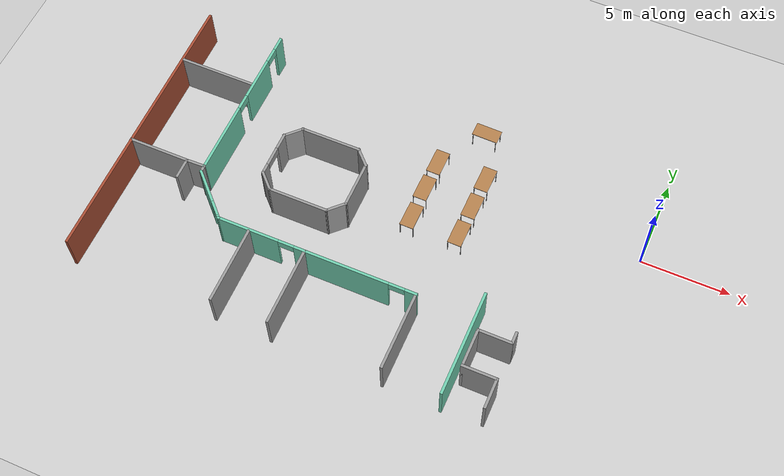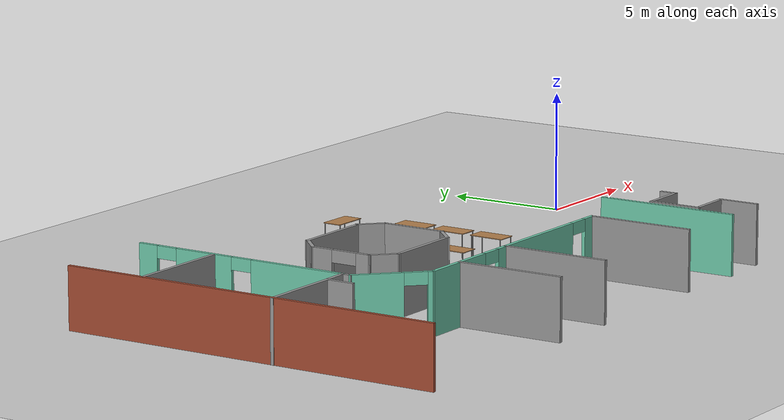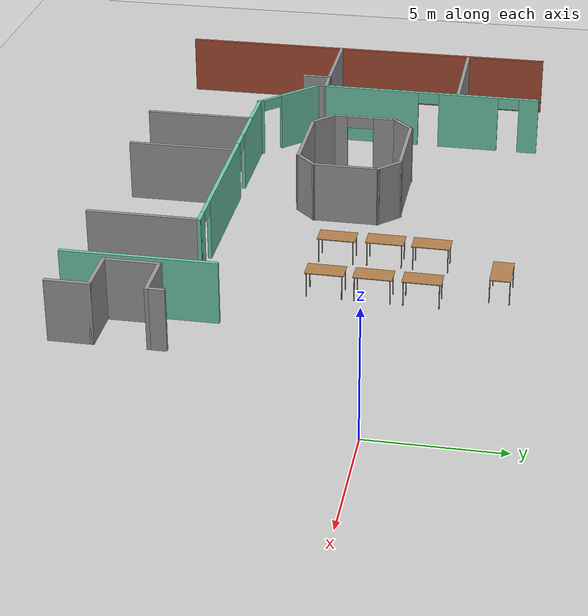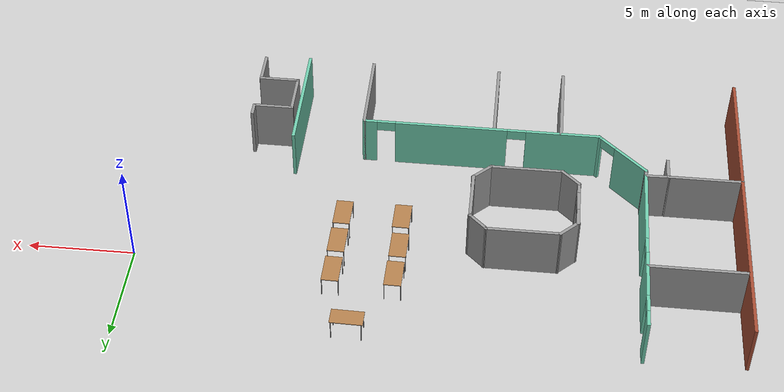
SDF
<sdf version="1.7">
 <world name="default">
  <model name="ground_plane">
   <static>1</static>
   <link name="link">
    <collision name="collision">
     <geometry><plane><normal>0 0 1</normal><size>100 100</size></plane></geometry>
     <surface>
      <contact><ode><kp>1e15</kp><kd>1e13</kd></ode></contact>
      <friction><ode><mu>1.0</mu><mu2>1.0</mu2></ode></friction>
     </surface>
    </collision>
    <visual name="visual">
     <cast_shadows>0</cast_shadows>
     <geometry><plane><normal>0 0 1</normal><size>100 100</size></plane></geometry>
     <material>
      <script><uri>file://media/materials/scripts/gazebo.material</uri><name>Gazebo/Grey</name></script>
     </material>
    </visual>
   </link>
  </model>
  <model name="circuit_launch">
   <pose>-0.874625 6.32825 0 0 -0 0</pose>
   <link name="Wall_113">
    <pose>-22.548 -6.83655 0 0 -0 -1.57507</pose>
    <visual name="Wall_113_Visual_0">
     <pose>-4.29939 0 1.25 0 -0 0</pose>
     <geometry><box><size>0.849233 0.15 2.5</size></box></geometry>
     <material>
      <script><uri>file://media/materials/scripts/gazebo.material</uri><name>Gazebo/Grey</name></script>
      <ambient>0.435294 0.796078 0.67451 1</ambient>
     </material>
     <meta><layer>0</layer></meta>
    </visual>
    <collision name="Wall_113_Collision_0">
     <geometry><box><size>0.849233 0.15 2.5</size></box></geometry>
     <pose>-4.29939 0 1.25 0 -0 0</pose>
    </collision>
    <visual name="Wall_113_Visual_1">
     <pose>-1.67683 0 1.25 0 -0 0</pose>
     <geometry><box><size>2.59588 0.15 2.5</size></box></geometry>
     <material>
      <script><uri>file://media/materials/scripts/gazebo.material</uri><name>Gazebo/Grey</name></script>
      <ambient>0.435294 0.796078 0.67451 1</ambient>
     </material>
     <meta><layer>0</layer></meta>
    </visual>
    <collision name="Wall_113_Collision_1">
     <geometry><box><size>2.59588 0.15 2.5</size></box></geometry>
     <pose>-1.67683 0 1.25 0 -0 0</pose>
    </collision>
    <visual name="Wall_113_Visual_2">
     <pose>2.62255 0 1.25 0 -0 0</pose>
     <geometry><box><size>4.2029 0.15 2.5</size></box></geometry>
     <material>
      <script><uri>file://media/materials/scripts/gazebo.material</uri><name>Gazebo/Grey</name></script>
      <ambient>0.435294 0.796078 0.67451 1</ambient>
     </material>
     <meta><layer>0</layer></meta>
    </visual>
    <collision name="Wall_113_Collision_2">
     <geometry><box><size>4.2029 0.15 2.5</size></box></geometry>
     <pose>2.62255 0 1.25 0 -0 0</pose>
    </collision>
    <visual name="Wall_113_Visual_3">
     <pose>-3.42477 0 2.25 0 -0 0</pose>
     <geometry><box><size>0.9 0.15 0.5</size></box></geometry>
     <material>
      <script><uri>file://media/materials/scripts/gazebo.material</uri><name>Gazebo/Grey</name></script>
      <ambient>0.435294 0.796078 0.67451 1</ambient>
     </material>
     <meta><layer>0</layer></meta>
    </visual>
    <collision name="Wall_113_Collision_3">
     <geometry><box><size>0.9 0.15 0.5</size></box></geometry>
     <pose>-3.42477 0 2.25 0 -0 0</pose>
    </collision>
    <visual name="Wall_113_Visual_4">
     <pose>0.071105 0 2.25 0 -0 0</pose>
     <geometry><box><size>0.9 0.15 0.5</size></box></geometry>
     <material>
      <script><uri>file://media/materials/scripts/gazebo.material</uri><name>Gazebo/Grey</name></script>
      <ambient>0.435294 0.796078 0.67451 1</ambient>
     </material>
     <meta><layer>0</layer></meta>
    </visual>
    <collision name="Wall_113_Collision_4">
     <geometry><box><size>0.9 0.15 0.5</size></box></geometry>
     <pose>0.071105 0 2.25 0 -0 0</pose>
    </collision>
   </link>
   <link name="Wall_115">
    <collision name="Wall_115_Collision">
     <geometry><box><size>3.5 0.15 2.5</size></box></geometry>
     <pose>0 0 1.25 0 -0 0</pose>
    </collision>
    <visual name="Wall_115_Visual">
     <pose>0 0 1.25 0 -0 0</pose>
     <geometry><box><size>3.5 0.15 2.5</size></box></geometry>
     <material>
      <script><uri>file://media/materials/scripts/gazebo.material</uri><name>Gazebo/Grey</name></script>
      <ambient>1 1 1 1</ambient>
     </material>
     <meta><layer>0</layer></meta>
    </visual>
    <pose>-17.0124 -7.21468 0 0 -0 0</pose>
   </link>
   <link name="Wall_116">
    <collision name="Wall_116_Collision">
     <geometry><box><size>1.25 0.15 2.5</size></box></geometry>
     <pose>0 0 1.25 0 -0 0</pose>
    </collision>
    <visual name="Wall_116_Visual">
     <pose>0 0 1.25 0 -0 0</pose>
     <geometry><box><size>1.25 0.15 2.5</size></box></geometry>
     <material>
      <script><uri>file://media/materials/scripts/gazebo.material</uri><name>Gazebo/Grey</name></script>
      <ambient>1 1 1 1</ambient>
     </material>
     <meta><layer>0</layer></meta>
    </visual>
    <pose>-14.9485 -7.60359 0 0 -0 -0.785398</pose>
   </link>
   <link name="Wall_117">
    <collision name="Wall_117_Collision">
     <geometry><box><size>2.75 0.15 2.5</size></box></geometry>
     <pose>0 0 1.25 0 -0 0</pose>
    </collision>
    <visual name="Wall_117_Visual">
     <pose>0 0 1.25 0 -0 0</pose>
     <geometry><box><size>2.75 0.15 2.5</size></box></geometry>
     <material>
      <script><uri>file://media/materials/scripts/gazebo.material</uri><name>Gazebo/Grey</name></script>
      <ambient>1 1 1 1</ambient>
     </material>
     <meta><layer>0</layer></meta>
    </visual>
    <pose>-14.5595 -9.2925 0 0 -0 -1.5708</pose>
   </link>
   <link name="Wall_118">
    <collision name="Wall_118_Collision">
     <geometry><box><size>1.25 0.15 2.5</size></box></geometry>
     <pose>0 0 1.25 0 -0 0</pose>
    </collision>
    <visual name="Wall_118_Visual">
     <pose>0 0 1.25 0 -0 0</pose>
     <geometry><box><size>1.25 0.15 2.5</size></box></geometry>
     <material>
      <script><uri>file://media/materials/scripts/gazebo.material</uri><name>Gazebo/Grey</name></script>
      <ambient>1 1 1 1</ambient>
     </material>
     <meta><layer>0</layer></meta>
    </visual>
    <pose>-14.9485 -10.9814 0 0 -0 -2.35619</pose>
   </link>
   <link name="Wall_119">
    <collision name="Wall_119_Collision">
     <geometry><box><size>3.5 0.15 2.5</size></box></geometry>
     <pose>0 0 1.25 0 -0 0</pose>
    </collision>
    <visual name="Wall_119_Visual">
     <pose>0 0 1.25 0 -0 0</pose>
     <geometry><box><size>3.5 0.15 2.5</size></box></geometry>
     <material>
      <script><uri>file://media/materials/scripts/gazebo.material</uri><name>Gazebo/Grey</name></script>
      <ambient>1 1 1 1</ambient>
     </material>
     <meta><layer>0</layer></meta>
    </visual>
    <pose>-17.0124 -11.3703 0 0 -0 3.14159</pose>
   </link>
   <link name="Wall_120">
    <collision name="Wall_120_Collision">
     <geometry><box><size>1.25 0.15 2.5</size></box></geometry>
     <pose>0 0 1.25 0 -0 0</pose>
    </collision>
    <visual name="Wall_120_Visual">
     <pose>0 0 1.25 0 -0 0</pose>
     <geometry><box><size>1.25 0.15 2.5</size></box></geometry>
     <material>
      <script><uri>file://media/materials/scripts/gazebo.material</uri><name>Gazebo/Grey</name></script>
      <ambient>1 1 1 1</ambient>
     </material>
     <meta><layer>0</layer></meta>
    </visual>
    <pose>-19.0763 -10.9814 0 0 -0 2.35619</pose>
   </link>
   <link name="Wall_121">
    <pose>-19.4652 -9.2925 0 0 -0 1.5708</pose>
    <visual name="Wall_121_Visual_0">
     <pose>-1.04498 0 1.25 0 -0 0</pose>
     <geometry><box><size>0.66004 0.15 2.5</size></box></geometry>
     <material>
      <script><uri>file://media/materials/scripts/gazebo.material</uri><name>Gazebo/Grey</name></script>
      <ambient>1 1 1 1</ambient>
     </material>
     <meta><layer>0</layer></meta>
    </visual>
    <collision name="Wall_121_Collision_0">
     <geometry><box><size>0.66004 0.15 2.5</size></box></geometry>
     <pose>-1.04498 0 1.25 0 -0 0</pose>
    </collision>
    <visual name="Wall_121_Visual_1">
     <pose>0.884108 0 1.25 0 -0 0</pose>
     <geometry><box><size>0.981785 0.15 2.5</size></box></geometry>
     <material>
      <script><uri>file://media/materials/scripts/gazebo.material</uri><name>Gazebo/Grey</name></script>
      <ambient>1 1 1 1</ambient>
     </material>
     <meta><layer>0</layer></meta>
    </visual>
    <collision name="Wall_121_Collision_1">
     <geometry><box><size>0.981785 0.15 2.5</size></box></geometry>
     <pose>0.884108 0 1.25 0 -0 0</pose>
    </collision>
    <visual name="Wall_121_Visual_2">
     <pose>-0.160872 0 2.25 0 -0 0</pose>
     <geometry><box><size>1.10817 0.15 0.5</size></box></geometry>
     <material>
      <script><uri>file://media/materials/scripts/gazebo.material</uri><name>Gazebo/Grey</name></script>
      <ambient>1 1 1 1</ambient>
     </material>
     <meta><layer>0</layer></meta>
    </visual>
    <collision name="Wall_121_Collision_2">
     <geometry><box><size>1.10817 0.15 0.5</size></box></geometry>
     <pose>-0.160872 0 2.25 0 -0 0</pose>
    </collision>
   </link>
   <link name="Wall_122">
    <collision name="Wall_122_Collision">
     <geometry><box><size>1.25 0.15 2.5</size></box></geometry>
     <pose>0 0 1.25 0 -0 0</pose>
    </collision>
    <visual name="Wall_122_Visual">
     <pose>0 0 1.25 0 -0 0</pose>
     <geometry><box><size>1.25 0.15 2.5</size></box></geometry>
     <material>
      <script><uri>file://media/materials/scripts/gazebo.material</uri><name>Gazebo/Grey</name></script>
      <ambient>1 1 1 1</ambient>
     </material>
     <meta><layer>0</layer></meta>
    </visual>
    <pose>-19.0763 -7.60359 0 0 -0 0.785398</pose>
   </link>
   <link name="Wall_126">
    <collision name="Wall_126_Collision">
     <geometry><box><size>6 0.15 2.5</size></box></geometry>
     <pose>0 0 1.25 0 -0 0</pose>
    </collision>
    <visual name="Wall_126_Visual">
     <pose>0 0 1.25 0 -0 0</pose>
     <geometry><box><size>6 0.15 2.5</size></box></geometry>
     <material>
      <script><uri>file://media/materials/scripts/gazebo.material</uri><name>Gazebo/Grey</name></script>
      <ambient>0.435294 0.796078 0.67451 1</ambient>
     </material>
     <meta><layer>0</layer></meta>
    </visual>
    <pose>-5.76615 -15.5406 0 0 -0 -1.5708</pose>
   </link>
   <link name="Wall_139">
    <collision name="Wall_139_Collision">
     <geometry><box><size>0.75 0.15 2.5</size></box></geometry>
     <pose>0 0 1.25 0 -0 0</pose>
    </collision>
    <visual name="Wall_139_Visual">
     <pose>0 0 1.25 0 -0 0</pose>
     <geometry><box><size>0.75 0.15 2.5</size></box></geometry>
     <material>
      <script><uri>file://media/materials/scripts/gazebo.material</uri><name>Gazebo/Grey</name></script>
      <ambient>1 1 1 1</ambient>
     </material>
     <meta><layer>0</layer></meta>
    </visual>
    <pose>-3.52583 -14.3275 0 0 -0 -1.5708</pose>
   </link>
   <link name="Wall_140">
    <collision name="Wall_140_Collision">
     <geometry><box><size>2 0.15 2.5</size></box></geometry>
     <pose>0 0 1.25 0 -0 0</pose>
    </collision>
    <visual name="Wall_140_Visual">
     <pose>0 0 1.25 0 -0 0</pose>
     <geometry><box><size>2 0.15 2.5</size></box></geometry>
     <material>
      <script><uri>file://media/materials/scripts/gazebo.material</uri><name>Gazebo/Grey</name></script>
      <ambient>1 1 1 1</ambient>
     </material>
     <meta><layer>0</layer></meta>
    </visual>
    <pose>-4.45083 -14.6275 0 0 -0 3.14159</pose>
   </link>
   <link name="Wall_141">
    <collision name="Wall_141_Collision">
     <geometry><box><size>2.25 0.15 2.5</size></box></geometry>
     <pose>0 0 1.25 0 -0 0</pose>
    </collision>
    <visual name="Wall_141_Visual">
     <pose>0 0 1.25 0 -0 0</pose>
     <geometry><box><size>2.25 0.15 2.5</size></box></geometry>
     <material>
      <script><uri>file://media/materials/scripts/gazebo.material</uri><name>Gazebo/Grey</name></script>
      <ambient>1 1 1 1</ambient>
     </material>
     <meta><layer>0</layer></meta>
    </visual>
    <pose>-5.37583 -15.6775 0 0 -0 -1.5708</pose>
   </link>
   <link name="Wall_142">
    <collision name="Wall_142_Collision">
     <geometry><box><size>2 0.15 2.5</size></box></geometry>
     <pose>0 0 1.25 0 -0 0</pose>
    </collision>
    <visual name="Wall_142_Visual">
     <pose>0 0 1.25 0 -0 0</pose>
     <geometry><box><size>2 0.15 2.5</size></box></geometry>
     <material>
      <script><uri>file://media/materials/scripts/gazebo.material</uri><name>Gazebo/Grey</name></script>
      <ambient>1 1 1 1</ambient>
     </material>
     <meta><layer>0</layer></meta>
    </visual>
    <pose>-4.45083 -16.7275 0 0 -0 0</pose>
   </link>
   <link name="Wall_144">
    <collision name="Wall_144_Collision">
     <geometry><box><size>1.75 0.15 2.5</size></box></geometry>
     <pose>0 0 1.25 0 -0 0</pose>
    </collision>
    <visual name="Wall_144_Visual">
     <pose>0 0 1.25 0 -0 0</pose>
     <geometry><box><size>1.75 0.15 2.5</size></box></geometry>
     <material>
      <script><uri>file://media/materials/scripts/gazebo.material</uri><name>Gazebo/Grey</name></script>
      <ambient>1 1 1 1</ambient>
     </material>
     <meta><layer>0</layer></meta>
    </visual>
    <pose>-3.52583 -17.5275 0 0 -0 -1.5708</pose>
   </link>
   <link name="Wall_146">
    <pose>-14.7008 -14.0275 0 0 -0 0</pose>
    <visual name="Wall_146_Visual_0">
     <pose>-3.95927 0 1.25 0 -0 0</pose>
     <geometry><box><size>3.58146 0.15 2.5</size></box></geometry>
     <material>
      <script><uri>file://media/materials/scripts/gazebo.material</uri><name>Gazebo/Grey</name></script>
      <ambient>0.435294 0.796078 0.67451 1</ambient>
     </material>
     <meta><layer>0</layer></meta>
    </visual>
    <collision name="Wall_146_Collision_0">
     <geometry><box><size>3.58146 0.15 2.5</size></box></geometry>
     <pose>-3.95927 0 1.25 0 -0 0</pose>
    </collision>
    <visual name="Wall_146_Visual_1">
     <pose>1.43879 0 1.25 0 -0 0</pose>
     <geometry><box><size>5.41466 0.15 2.5</size></box></geometry>
     <material>
      <script><uri>file://media/materials/scripts/gazebo.material</uri><name>Gazebo/Grey</name></script>
      <ambient>0.435294 0.796078 0.67451 1</ambient>
     </material>
     <meta><layer>0</layer></meta>
    </visual>
    <collision name="Wall_146_Collision_1">
     <geometry><box><size>5.41466 0.15 2.5</size></box></geometry>
     <pose>1.43879 0 1.25 0 -0 0</pose>
    </collision>
    <visual name="Wall_146_Visual_2">
     <pose>5.39806 0 1.25 0 -0 0</pose>
     <geometry><box><size>0.703885 0.15 2.5</size></box></geometry>
     <material>
      <script><uri>file://media/materials/scripts/gazebo.material</uri><name>Gazebo/Grey</name></script>
      <ambient>0.435294 0.796078 0.67451 1</ambient>
     </material>
     <meta><layer>0</layer></meta>
    </visual>
    <collision name="Wall_146_Collision_2">
     <geometry><box><size>0.703885 0.15 2.5</size></box></geometry>
     <pose>5.39806 0 1.25 0 -0 0</pose>
    </collision>
    <visual name="Wall_146_Visual_3">
     <pose>-1.71854 0 2.25 0 -0 0</pose>
     <geometry><box><size>0.9 0.15 0.5</size></box></geometry>
     <material>
      <script><uri>file://media/materials/scripts/gazebo.material</uri><name>Gazebo/Grey</name></script>
      <ambient>0.435294 0.796078 0.67451 1</ambient>
     </material>
     <meta><layer>0</layer></meta>
    </visual>
    <collision name="Wall_146_Collision_3">
     <geometry><box><size>0.9 0.15 0.5</size></box></geometry>
     <pose>-1.71854 0 2.25 0 -0 0</pose>
    </collision>
    <visual name="Wall_146_Visual_4">
     <pose>4.59612 0 2.25 0 -0 0</pose>
     <geometry><box><size>0.9 0.15 0.5</size></box></geometry>
     <material>
      <script><uri>file://media/materials/scripts/gazebo.material</uri><name>Gazebo/Grey</name></script>
      <ambient>0.435294 0.796078 0.67451 1</ambient>
     </material>
     <meta><layer>0</layer></meta>
    </visual>
    <collision name="Wall_146_Collision_4">
     <geometry><box><size>0.9 0.15 0.5</size></box></geometry>
     <pose>4.59612 0 2.25 0 -0 0</pose>
    </collision>
   </link>
   <link name="Wall_149">
    <collision name="Wall_149_Collision">
     <geometry><box><size>4.5 0.15 2.5</size></box></geometry>
     <pose>0 0 1.25 0 -0 0</pose>
    </collision>
    <visual name="Wall_149_Visual">
     <pose>0 0 1.25 0 -0 0</pose>
     <geometry><box><size>4.5 0.15 2.5</size></box></geometry>
     <material>
      <script><uri>file://media/materials/scripts/gazebo.material</uri><name>Gazebo/Grey</name></script>
      <ambient>1 1 1 1</ambient>
     </material>
     <meta><layer>0</layer></meta>
    </visual>
    <pose>-15.3417 -16.2052 0 0 -0 -1.5708</pose>
   </link>
   <link name="Wall_151">
    <collision name="Wall_151_Collision">
     <geometry><box><size>4.5 0.15 2.5</size></box></geometry>
     <pose>0 0 1.25 0 -0 0</pose>
    </collision>
    <visual name="Wall_151_Visual">
     <pose>0 0 1.25 0 -0 0</pose>
     <geometry><box><size>4.5 0.15 2.5</size></box></geometry>
     <material>
      <script><uri>file://media/materials/scripts/gazebo.material</uri><name>Gazebo/Grey</name></script>
      <ambient>1 1 1 1</ambient>
     </material>
     <meta><layer>0</layer></meta>
    </visual>
    <pose>-18.5599 -16.2253 0 0 -0 -1.5708</pose>
   </link>
   <link name="Wall_181">
    <collision name="Wall_181_Collision">
     <geometry><box><size>4.5 0.15 2.5</size></box></geometry>
     <pose>0 0 1.25 0 -0 0</pose>
    </collision>
    <visual name="Wall_181_Visual">
     <pose>0 0 1.25 0 -0 0</pose>
     <geometry><box><size>4.5 0.15 2.5</size></box></geometry>
     <material>
      <script><uri>file://media/materials/scripts/gazebo.material</uri><name>Gazebo/Grey</name></script>
      <ambient>1 1 1 1</ambient>
     </material>
     <meta><layer>0</layer></meta>
    </visual>
    <pose>-24.7465 -5.63091 0 0 -0 0</pose>
   </link>
   <link name="Wall_212">
    <collision name="Wall_212_Collision">
     <geometry><box><size>4.5 0.15 2.5</size></box></geometry>
     <pose>0 0 1.25 0 -0 0</pose>
    </collision>
    <visual name="Wall_212_Visual">
     <pose>0 0 1.25 0 -0 0</pose>
     <geometry><box><size>4.5 0.15 2.5</size></box></geometry>
     <material>
      <script><uri>file://media/materials/scripts/gazebo.material</uri><name>Gazebo/Grey</name></script>
      <ambient>1 1 1 1</ambient>
     </material>
     <meta><layer>0</layer></meta>
    </visual>
    <pose>-9.02583 -16.2025 0 0 -0 -1.5708</pose>
   </link>
   <link name="Wall_54">
    <collision name="Wall_54_Collision">
     <geometry><box><size>16.25 0.15 2.5</size></box></geometry>
     <pose>0 0 1.25 0 -0 0</pose>
    </collision>
    <visual name="Wall_54_Visual">
     <pose>0 0 1.25 0 -0 0</pose>
     <geometry><box><size>16.25 0.15 2.5</size></box></geometry>
     <material>
      <script><uri>file://media/materials/scripts/gazebo.material</uri><name>Gazebo/Bricks</name></script>
      <ambient>1 1 1 1</ambient>
     </material>
     <meta><layer>0</layer></meta>
    </visual>
    <pose>-27.0248 -10.3395 0 0 -0 1.5708</pose>
   </link>
   <link name="Wall_68">
    <collision name="Wall_68_Collision">
     <geometry><box><size>3.57611 0.15 2.5</size></box></geometry>
     <pose>0 0 1.25 0 -0 0</pose>
    </collision>
    <visual name="Wall_68_Visual">
     <pose>0 0 1.25 0 -0 0</pose>
     <geometry><box><size>3.57611 0.15 2.5</size></box></geometry>
     <material>
      <script><uri>file://media/materials/scripts/gazebo.material</uri><name>Gazebo/Grey</name></script>
      <ambient>1 1 1 1</ambient>
     </material>
     <meta><layer>0</layer></meta>
    </visual>
    <pose>-25.321 -11.5161 0 0 -0 0</pose>
   </link>
   <link name="Wall_69">
    <collision name="Wall_69_Collision">
     <geometry><box><size>1.25 0.15 2.5</size></box></geometry>
     <pose>0 0 1.25 0 -0 0</pose>
    </collision>
    <visual name="Wall_69_Visual">
     <pose>0 0 1.25 0 -0 0</pose>
     <geometry><box><size>1.25 0.15 2.5</size></box></geometry>
     <material>
      <script><uri>file://media/materials/scripts/gazebo.material</uri><name>Gazebo/Grey</name></script>
      <ambient>1 1 1 1</ambient>
     </material>
     <meta><layer>0</layer></meta>
    </visual>
    <pose>-23.6079 -12.0661 0 0 -0 -1.5708</pose>
   </link>
   <link name="Wall_71">
    <collision name="Wall_71_Collision">
     <geometry><box><size>1.19052 0.15 2.5</size></box></geometry>
     <pose>0 0 1.25 0 -0 0</pose>
    </collision>
    <visual name="Wall_71_Visual">
     <pose>0 0 1.25 0 -0 0</pose>
     <geometry><box><size>1.19052 0.15 2.5</size></box></geometry>
     <material>
      <script><uri>file://media/materials/scripts/gazebo.material</uri><name>Gazebo/Grey</name></script>
      <ambient>1 1 1 1</ambient>
     </material>
     <meta><layer>0</layer></meta>
    </visual>
    <pose>-23.0879 -11.5008 0 0 -0 0.029403</pose>
   </link>
   <link name="Wall_73">
    <collision name="Wall_73_Collision">
     <geometry><box><size>0.5 0.15 2.5</size></box></geometry>
     <pose>0 0 1.25 0 -0 0</pose>
    </collision>
    <visual name="Wall_73_Visual">
     <pose>0 0 1.25 0 -0 0</pose>
     <geometry><box><size>0.5 0.15 2.5</size></box></geometry>
     <material>
      <script><uri>file://media/materials/scripts/gazebo.material</uri><name>Gazebo/Grey</name></script>
      <ambient>1 1 1 1</ambient>
     </material>
     <meta><layer>0</layer></meta>
    </visual>
    <pose>-22.5679 -11.6605 0 0 -0 -1.5708</pose>
   </link>
   <link name="Wall_74">
    <pose>-21.4718 -12.9315 0 0 -0 -0.785398</pose>
    <visual name="Wall_74_Visual_0">
     <pose>-0.586655 0 1.25 0 -0 0</pose>
     <geometry><box><size>2.07669 0.15 2.5</size></box></geometry>
     <material>
      <script><uri>file://media/materials/scripts/gazebo.material</uri><name>Gazebo/Grey</name></script>
      <ambient>0.435294 0.796078 0.67451 1</ambient>
     </material>
     <meta><layer>0</layer></meta>
    </visual>
    <collision name="Wall_74_Collision_0">
     <geometry><box><size>2.07669 0.15 2.5</size></box></geometry>
     <pose>-0.586655 0 1.25 0 -0 0</pose>
    </collision>
    <visual name="Wall_74_Visual_1">
     <pose>1.48835 0 1.25 0 -0 0</pose>
     <geometry><box><size>0.273311 0.15 2.5</size></box></geometry>
     <material>
      <script><uri>file://media/materials/scripts/gazebo.material</uri><name>Gazebo/Grey</name></script>
      <ambient>0.435294 0.796078 0.67451 1</ambient>
     </material>
     <meta><layer>0</layer></meta>
    </visual>
    <collision name="Wall_74_Collision_1">
     <geometry><box><size>0.273311 0.15 2.5</size></box></geometry>
     <pose>1.48835 0 1.25 0 -0 0</pose>
    </collision>
    <visual name="Wall_74_Visual_2">
     <pose>0.901689 0 2.25 0 -0 0</pose>
     <geometry><box><size>0.9 0.15 0.5</size></box></geometry>
     <material>
      <script><uri>file://media/materials/scripts/gazebo.material</uri><name>Gazebo/Grey</name></script>
      <ambient>0.435294 0.796078 0.67451 1</ambient>
     </material>
     <meta><layer>0</layer></meta>
    </visual>
    <collision name="Wall_74_Collision_2">
     <geometry><box><size>0.9 0.15 0.5</size></box></geometry>
     <pose>0.901689 0 2.25 0 -0 0</pose>
    </collision>
   </link>
   <static>1</static>
  </model>
  <model name="table">
   <static>1</static>
   <link name="link">
    <collision name="surface">
     <pose>0 0 1 0 -0 0</pose>
     <geometry><box><size>1.5 0.8 0.03</size></box></geometry>
     <surface><friction><ode><mu>0.6</mu><mu2>0.6</mu2></ode></friction></surface>
    </collision>
    <visual name="visual1">
     <pose>0 0 1 0 -0 0</pose>
     <geometry><box><size>1.5 0.8 0.03</size></box></geometry>
     <material>
      <script><uri>file://media/materials/scripts/gazebo.material</uri><name>Gazebo/Wood</name></script>
     </material>
    </visual>
    <collision name="front_left_leg">
     <pose>0.68 0.38 0.5 0 -0 0</pose>
     <geometry><cylinder><radius>0.02</radius><length>1</length></cylinder></geometry>
    </collision>
    <visual name="front_left_leg">
     <pose>0.68 0.38 0.5 0 -0 0</pose>
     <geometry><cylinder><radius>0.02</radius><length>1</length></cylinder></geometry>
     <material>
      <script><uri>file://media/materials/scripts/gazebo.material</uri><name>Gazebo/Grey</name></script>
     </material>
    </visual>
    <collision name="front_right_leg">
     <pose>0.68 -0.38 0.5 0 -0 0</pose>
     <geometry><cylinder><radius>0.02</radius><length>1</length></cylinder></geometry>
    </collision>
    <visual name="front_right_leg">
     <pose>0.68 -0.38 0.5 0 -0 0</pose>
     <geometry><cylinder><radius>0.02</radius><length>1</length></cylinder></geometry>
     <material>
      <script><uri>file://media/materials/scripts/gazebo.material</uri><name>Gazebo/Grey</name></script>
     </material>
    </visual>
    <collision name="back_right_leg">
     <pose>-0.68 -0.38 0.5 0 -0 0</pose>
     <geometry><cylinder><radius>0.02</radius><length>1</length></cylinder></geometry>
    </collision>
    <visual name="back_right_leg">
     <pose>-0.68 -0.38 0.5 0 -0 0</pose>
     <geometry><cylinder><radius>0.02</radius><length>1</length></cylinder></geometry>
     <material>
      <script><uri>file://media/materials/scripts/gazebo.material</uri><name>Gazebo/Grey</name></script>
     </material>
    </visual>
    <collision name="back_left_leg">
     <pose>-0.68 0.38 0.5 0 -0 0</pose>
     <geometry><cylinder><radius>0.02</radius><length>1</length></cylinder></geometry>
    </collision>
    <visual name="back_left_leg">
     <pose>-0.68 0.38 0.5 0 -0 0</pose>
     <geometry><cylinder><radius>0.02</radius><length>1</length></cylinder></geometry>
     <material>
      <script><uri>file://media/materials/scripts/gazebo.material</uri><name>Gazebo/Grey</name></script>
     </material>
    </visual>
   </link>
   <pose>-12.2396 0.932048 0 0 -0 1.55611</pose>
  </model>
  <model name="table_clone">
   <static>1</static>
   <link name="link">
    <collision name="surface">
     <pose>0 0 1 0 -0 0</pose>
     <geometry><box><size>1.5 0.8 0.03</size></box></geometry>
     <surface><friction><ode><mu>0.6</mu><mu2>0.6</mu2></ode></friction></surface>
    </collision>
    <visual name="visual1">
     <pose>0 0 1 0 -0 0</pose>
     <geometry><box><size>1.5 0.8 0.03</size></box></geometry>
     <material>
      <script><uri>file://media/materials/scripts/gazebo.material</uri><name>Gazebo/Wood</name></script>
     </material>
    </visual>
    <collision name="front_left_leg">
     <pose>0.68 0.38 0.5 0 -0 0</pose>
     <geometry><cylinder><radius>0.02</radius><length>1</length></cylinder></geometry>
    </collision>
    <visual name="front_left_leg">
     <pose>0.68 0.38 0.5 0 -0 0</pose>
     <geometry><cylinder><radius>0.02</radius><length>1</length></cylinder></geometry>
     <material>
      <script><uri>file://media/materials/scripts/gazebo.material</uri><name>Gazebo/Grey</name></script>
     </material>
    </visual>
    <collision name="front_right_leg">
     <pose>0.68 -0.38 0.5 0 -0 0</pose>
     <geometry><cylinder><radius>0.02</radius><length>1</length></cylinder></geometry>
    </collision>
    <visual name="front_right_leg">
     <pose>0.68 -0.38 0.5 0 -0 0</pose>
     <geometry><cylinder><radius>0.02</radius><length>1</length></cylinder></geometry>
     <material>
      <script><uri>file://media/materials/scripts/gazebo.material</uri><name>Gazebo/Grey</name></script>
     </material>
    </visual>
    <collision name="back_right_leg">
     <pose>-0.68 -0.38 0.5 0 -0 0</pose>
     <geometry><cylinder><radius>0.02</radius><length>1</length></cylinder></geometry>
    </collision>
    <visual name="back_right_leg">
     <pose>-0.68 -0.38 0.5 0 -0 0</pose>
     <geometry><cylinder><radius>0.02</radius><length>1</length></cylinder></geometry>
     <material>
      <script><uri>file://media/materials/scripts/gazebo.material</uri><name>Gazebo/Grey</name></script>
     </material>
    </visual>
    <collision name="back_left_leg">
     <pose>-0.68 0.38 0.5 0 -0 0</pose>
     <geometry><cylinder><radius>0.02</radius><length>1</length></cylinder></geometry>
    </collision>
    <visual name="back_left_leg">
     <pose>-0.68 0.38 0.5 0 -0 0</pose>
     <geometry><cylinder><radius>0.02</radius><length>1</length></cylinder></geometry>
     <material>
      <script><uri>file://media/materials/scripts/gazebo.material</uri><name>Gazebo/Grey</name></script>
     </material>
    </visual>
   </link>
   <pose>-12.2801 -0.874708 0 0 -0 1.55611</pose>
  </model>
  <model name="table_clone_0">
   <static>1</static>
   <link name="link">
    <collision name="surface">
     <pose>0 0 1 0 -0 0</pose>
     <geometry><box><size>1.5 0.8 0.03</size></box></geometry>
     <surface><friction><ode><mu>0.6</mu><mu2>0.6</mu2></ode></friction></surface>
    </collision>
    <visual name="visual1">
     <pose>0 0 1 0 -0 0</pose>
     <geometry><box><size>1.5 0.8 0.03</size></box></geometry>
     <material>
      <script><uri>file://media/materials/scripts/gazebo.material</uri><name>Gazebo/Wood</name></script>
     </material>
    </visual>
    <collision name="front_left_leg">
     <pose>0.68 0.38 0.5 0 -0 0</pose>
     <geometry><cylinder><radius>0.02</radius><length>1</length></cylinder></geometry>
    </collision>
    <visual name="front_left_leg">
     <pose>0.68 0.38 0.5 0 -0 0</pose>
     <geometry><cylinder><radius>0.02</radius><length>1</length></cylinder></geometry>
     <material>
      <script><uri>file://media/materials/scripts/gazebo.material</uri><name>Gazebo/Grey</name></script>
     </material>
    </visual>
    <collision name="front_right_leg">
     <pose>0.68 -0.38 0.5 0 -0 0</pose>
     <geometry><cylinder><radius>0.02</radius><length>1</length></cylinder></geometry>
    </collision>
    <visual name="front_right_leg">
     <pose>0.68 -0.38 0.5 0 -0 0</pose>
     <geometry><cylinder><radius>0.02</radius><length>1</length></cylinder></geometry>
     <material>
      <script><uri>file://media/materials/scripts/gazebo.material</uri><name>Gazebo/Grey</name></script>
     </material>
    </visual>
    <collision name="back_right_leg">
     <pose>-0.68 -0.38 0.5 0 -0 0</pose>
     <geometry><cylinder><radius>0.02</radius><length>1</length></cylinder></geometry>
    </collision>
    <visual name="back_right_leg">
     <pose>-0.68 -0.38 0.5 0 -0 0</pose>
     <geometry><cylinder><radius>0.02</radius><length>1</length></cylinder></geometry>
     <material>
      <script><uri>file://media/materials/scripts/gazebo.material</uri><name>Gazebo/Grey</name></script>
     </material>
    </visual>
    <collision name="back_left_leg">
     <pose>-0.68 0.38 0.5 0 -0 0</pose>
     <geometry><cylinder><radius>0.02</radius><length>1</length></cylinder></geometry>
    </collision>
    <visual name="back_left_leg">
     <pose>-0.68 0.38 0.5 0 -0 0</pose>
     <geometry><cylinder><radius>0.02</radius><length>1</length></cylinder></geometry>
     <material>
      <script><uri>file://media/materials/scripts/gazebo.material</uri><name>Gazebo/Grey</name></script>
     </material>
    </visual>
   </link>
   <pose>-12.2481 -2.77017 0 0 -0 1.55611</pose>
  </model>
  <model name="table_clone_1">
   <static>1</static>
   <link name="link">
    <collision name="surface">
     <pose>0 0 1 0 -0 0</pose>
     <geometry><box><size>1.5 0.8 0.03</size></box></geometry>
     <surface><friction><ode><mu>0.6</mu><mu2>0.6</mu2></ode></friction></surface>
    </collision>
    <visual name="visual1">
     <pose>0 0 1 0 -0 0</pose>
     <geometry><box><size>1.5 0.8 0.03</size></box></geometry>
     <material>
      <script><uri>file://media/materials/scripts/gazebo.material</uri><name>Gazebo/Wood</name></script>
     </material>
    </visual>
    <collision name="front_left_leg">
     <pose>0.68 0.38 0.5 0 -0 0</pose>
     <geometry><cylinder><radius>0.02</radius><length>1</length></cylinder></geometry>
    </collision>
    <visual name="front_left_leg">
     <pose>0.68 0.38 0.5 0 -0 0</pose>
     <geometry><cylinder><radius>0.02</radius><length>1</length></cylinder></geometry>
     <material>
      <script><uri>file://media/materials/scripts/gazebo.material</uri><name>Gazebo/Grey</name></script>
     </material>
    </visual>
    <collision name="front_right_leg">
     <pose>0.68 -0.38 0.5 0 -0 0</pose>
     <geometry><cylinder><radius>0.02</radius><length>1</length></cylinder></geometry>
    </collision>
    <visual name="front_right_leg">
     <pose>0.68 -0.38 0.5 0 -0 0</pose>
     <geometry><cylinder><radius>0.02</radius><length>1</length></cylinder></geometry>
     <material>
      <script><uri>file://media/materials/scripts/gazebo.material</uri><name>Gazebo/Grey</name></script>
     </material>
    </visual>
    <collision name="back_right_leg">
     <pose>-0.68 -0.38 0.5 0 -0 0</pose>
     <geometry><cylinder><radius>0.02</radius><length>1</length></cylinder></geometry>
    </collision>
    <visual name="back_right_leg">
     <pose>-0.68 -0.38 0.5 0 -0 0</pose>
     <geometry><cylinder><radius>0.02</radius><length>1</length></cylinder></geometry>
     <material>
      <script><uri>file://media/materials/scripts/gazebo.material</uri><name>Gazebo/Grey</name></script>
     </material>
    </visual>
    <collision name="back_left_leg">
     <pose>-0.68 0.38 0.5 0 -0 0</pose>
     <geometry><cylinder><radius>0.02</radius><length>1</length></cylinder></geometry>
    </collision>
    <visual name="back_left_leg">
     <pose>-0.68 0.38 0.5 0 -0 0</pose>
     <geometry><cylinder><radius>0.02</radius><length>1</length></cylinder></geometry>
     <material>
      <script><uri>file://media/materials/scripts/gazebo.material</uri><name>Gazebo/Grey</name></script>
     </material>
    </visual>
   </link>
   <pose>-9.41025 0.928105 0 0 -0 1.55611</pose>
  </model>
  <model name="table_clone_2">
   <static>1</static>
   <link name="link">
    <collision name="surface">
     <pose>0 0 1 0 -0 0</pose>
     <geometry><box><size>1.5 0.8 0.03</size></box></geometry>
     <surface><friction><ode><mu>0.6</mu><mu2>0.6</mu2></ode></friction></surface>
    </collision>
    <visual name="visual1">
     <pose>0 0 1 0 -0 0</pose>
     <geometry><box><size>1.5 0.8 0.03</size></box></geometry>
     <material>
      <script><uri>file://media/materials/scripts/gazebo.material</uri><name>Gazebo/Wood</name></script>
     </material>
    </visual>
    <collision name="front_left_leg">
     <pose>0.68 0.38 0.5 0 -0 0</pose>
     <geometry><cylinder><radius>0.02</radius><length>1</length></cylinder></geometry>
    </collision>
    <visual name="front_left_leg">
     <pose>0.68 0.38 0.5 0 -0 0</pose>
     <geometry><cylinder><radius>0.02</radius><length>1</length></cylinder></geometry>
     <material>
      <script><uri>file://media/materials/scripts/gazebo.material</uri><name>Gazebo/Grey</name></script>
     </material>
    </visual>
    <collision name="front_right_leg">
     <pose>0.68 -0.38 0.5 0 -0 0</pose>
     <geometry><cylinder><radius>0.02</radius><length>1</length></cylinder></geometry>
    </collision>
    <visual name="front_right_leg">
     <pose>0.68 -0.38 0.5 0 -0 0</pose>
     <geometry><cylinder><radius>0.02</radius><length>1</length></cylinder></geometry>
     <material>
      <script><uri>file://media/materials/scripts/gazebo.material</uri><name>Gazebo/Grey</name></script>
     </material>
    </visual>
    <collision name="back_right_leg">
     <pose>-0.68 -0.38 0.5 0 -0 0</pose>
     <geometry><cylinder><radius>0.02</radius><length>1</length></cylinder></geometry>
    </collision>
    <visual name="back_right_leg">
     <pose>-0.68 -0.38 0.5 0 -0 0</pose>
     <geometry><cylinder><radius>0.02</radius><length>1</length></cylinder></geometry>
     <material>
      <script><uri>file://media/materials/scripts/gazebo.material</uri><name>Gazebo/Grey</name></script>
     </material>
    </visual>
    <collision name="back_left_leg">
     <pose>-0.68 0.38 0.5 0 -0 0</pose>
     <geometry><cylinder><radius>0.02</radius><length>1</length></cylinder></geometry>
    </collision>
    <visual name="back_left_leg">
     <pose>-0.68 0.38 0.5 0 -0 0</pose>
     <geometry><cylinder><radius>0.02</radius><length>1</length></cylinder></geometry>
     <material>
      <script><uri>file://media/materials/scripts/gazebo.material</uri><name>Gazebo/Grey</name></script>
     </material>
    </visual>
   </link>
   <pose>-9.4375 -0.923212 0 0 -0 1.55611</pose>
  </model>
  <model name="table_clone_3">
   <static>1</static>
   <link name="link">
    <collision name="surface">
     <pose>0 0 1 0 -0 0</pose>
     <geometry><box><size>1.5 0.8 0.03</size></box></geometry>
     <surface><friction><ode><mu>0.6</mu><mu2>0.6</mu2></ode></friction></surface>
    </collision>
    <visual name="visual1">
     <pose>0 0 1 0 -0 0</pose>
     <geometry><box><size>1.5 0.8 0.03</size></box></geometry>
     <material>
      <script><uri>file://media/materials/scripts/gazebo.material</uri><name>Gazebo/Wood</name></script>
     </material>
    </visual>
    <collision name="front_left_leg">
     <pose>0.68 0.38 0.5 0 -0 0</pose>
     <geometry><cylinder><radius>0.02</radius><length>1</length></cylinder></geometry>
    </collision>
    <visual name="front_left_leg">
     <pose>0.68 0.38 0.5 0 -0 0</pose>
     <geometry><cylinder><radius>0.02</radius><length>1</length></cylinder></geometry>
     <material>
      <script><uri>file://media/materials/scripts/gazebo.material</uri><name>Gazebo/Grey</name></script>
     </material>
    </visual>
    <collision name="front_right_leg">
     <pose>0.68 -0.38 0.5 0 -0 0</pose>
     <geometry><cylinder><radius>0.02</radius><length>1</length></cylinder></geometry>
    </collision>
    <visual name="front_right_leg">
     <pose>0.68 -0.38 0.5 0 -0 0</pose>
     <geometry><cylinder><radius>0.02</radius><length>1</length></cylinder></geometry>
     <material>
      <script><uri>file://media/materials/scripts/gazebo.material</uri><name>Gazebo/Grey</name></script>
     </material>
    </visual>
    <collision name="back_right_leg">
     <pose>-0.68 -0.38 0.5 0 -0 0</pose>
     <geometry><cylinder><radius>0.02</radius><length>1</length></cylinder></geometry>
    </collision>
    <visual name="back_right_leg">
     <pose>-0.68 -0.38 0.5 0 -0 0</pose>
     <geometry><cylinder><radius>0.02</radius><length>1</length></cylinder></geometry>
     <material>
      <script><uri>file://media/materials/scripts/gazebo.material</uri><name>Gazebo/Grey</name></script>
     </material>
    </visual>
    <collision name="back_left_leg">
     <pose>-0.68 0.38 0.5 0 -0 0</pose>
     <geometry><cylinder><radius>0.02</radius><length>1</length></cylinder></geometry>
    </collision>
    <visual name="back_left_leg">
     <pose>-0.68 0.38 0.5 0 -0 0</pose>
     <geometry><cylinder><radius>0.02</radius><length>1</length></cylinder></geometry>
     <material>
      <script><uri>file://media/materials/scripts/gazebo.material</uri><name>Gazebo/Grey</name></script>
     </material>
    </visual>
   </link>
   <pose>-9.46464 -2.75716 0 0 -0 1.55611</pose>
  </model>
  <model name="table_clone_7_clone_clone">
   <static>1</static>
   <link name="link">
    <collision name="surface">
     <pose>0 0 1 0 -0 0</pose>
     <geometry><box><size>1.5 0.8 0.03</size></box></geometry>
     <surface><friction><ode><mu>0.6</mu><mu2>0.6</mu2></ode></friction></surface>
    </collision>
    <visual name="visual1">
     <pose>0 0 1 0 -0 0</pose>
     <geometry><box><size>1.5 0.8 0.03</size></box></geometry>
     <material>
      <script><uri>file://media/materials/scripts/gazebo.material</uri><name>Gazebo/Wood</name></script>
     </material>
    </visual>
    <collision name="front_left_leg">
     <pose>0.68 0.38 0.5 0 -0 0</pose>
     <geometry><cylinder><radius>0.02</radius><length>1</length></cylinder></geometry>
    </collision>
    <visual name="front_left_leg">
     <pose>0.68 0.38 0.5 0 -0 0</pose>
     <geometry><cylinder><radius>0.02</radius><length>1</length></cylinder></geometry>
     <material>
      <script><uri>file://media/materials/scripts/gazebo.material</uri><name>Gazebo/Grey</name></script>
     </material>
    </visual>
    <collision name="front_right_leg">
     <pose>0.68 -0.38 0.5 0 -0 0</pose>
     <geometry><cylinder><radius>0.02</radius><length>1</length></cylinder></geometry>
    </collision>
    <visual name="front_right_leg">
     <pose>0.68 -0.38 0.5 0 -0 0</pose>
     <geometry><cylinder><radius>0.02</radius><length>1</length></cylinder></geometry>
     <material>
      <script><uri>file://media/materials/scripts/gazebo.material</uri><name>Gazebo/Grey</name></script>
     </material>
    </visual>
    <collision name="back_right_leg">
     <pose>-0.68 -0.38 0.5 0 -0 0</pose>
     <geometry><cylinder><radius>0.02</radius><length>1</length></cylinder></geometry>
    </collision>
    <visual name="back_right_leg">
     <pose>-0.68 -0.38 0.5 0 -0 0</pose>
     <geometry><cylinder><radius>0.02</radius><length>1</length></cylinder></geometry>
     <material>
      <script><uri>file://media/materials/scripts/gazebo.material</uri><name>Gazebo/Grey</name></script>
     </material>
    </visual>
    <collision name="back_left_leg">
     <pose>-0.68 0.38 0.5 0 -0 0</pose>
     <geometry><cylinder><radius>0.02</radius><length>1</length></cylinder></geometry>
    </collision>
    <visual name="back_left_leg">
     <pose>-0.68 0.38 0.5 0 -0 0</pose>
     <geometry><cylinder><radius>0.02</radius><length>1</length></cylinder></geometry>
     <material>
      <script><uri>file://media/materials/scripts/gazebo.material</uri><name>Gazebo/Grey</name></script>
     </material>
    </visual>
   </link>
   <pose>-10.4492 3.791 0 0 0 -0.018624</pose>
  </model>
 </world>
</sdf>
